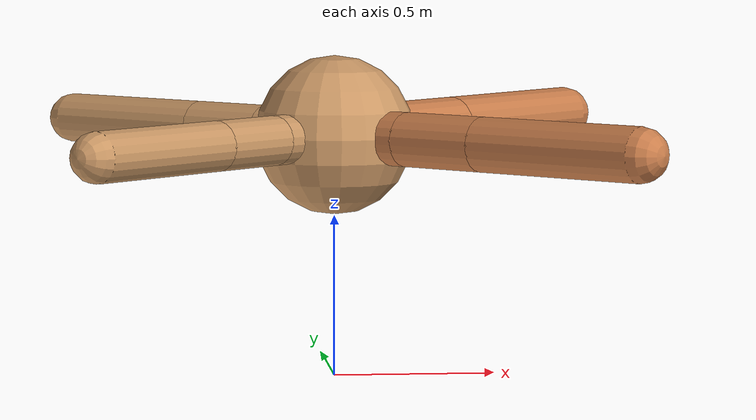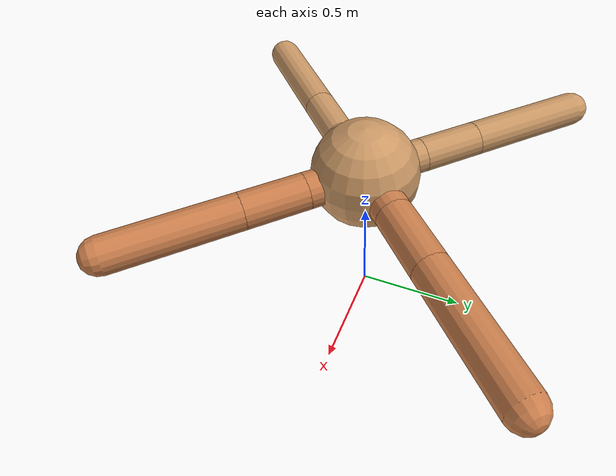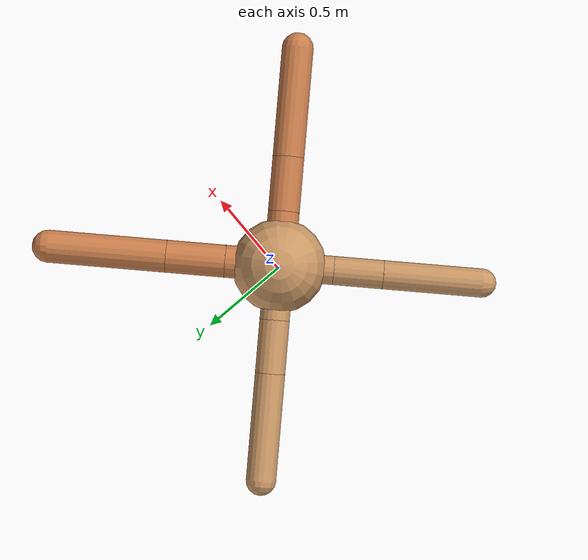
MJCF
<?xml version="1.0" ?>
<mujoco model="ant">

	<compiler angle="degree" coordinate="local" inertiafromgeom="true"/>

	<option integrator="RK4" timestep="0.01"/>

	<custom>

		<numeric data="0.0 0.0 0.55 1.0 0.0 0.0 0.0 0.0 1.0 0.0 -1.0 0.0 -1.0 0.0 1.0" name="init_qpos"/>

	</custom>

	<default>

		<joint armature="1" damping="1" limited="true"/>

		<geom conaffinity="0" condim="3" density="5.0" friction="1.5 0.1 0.1" margin="0.01" rgba="0.8 0.6 0.4 1"/>

	</default>

	<worldbody>

		<body name="torso" pos="0 0 0.75">

			<geom name="torso_geom" pos="0 0 0" size="0.246072991525829" type="sphere"/>

			<!--joint armature="0" damping="0" limited="false" margin="0.01" name="root" pos="0 0 0" type="free"/-->

			<body name="front_left_leg" pos="0 0 0">

				<geom fromto="0 0 0 0.2 0.2 0" name="aux_1_geom" size="0.08577669211288129" type="capsule" rgba=".8 .5 .3 1"/>

				<body name="aux_1" pos="0.2 0.2 0">

					<joint axis="0 0 1" name="hip_1" pos="0.0 0.0 0.0" range="-40 40" type="hinge"/>

					<geom fromto="0 0 0 0.21821730563172906 0.21821730563172906 0" name="left_leg_geom" size="0.08577669211288129" type="capsule" rgba=".8 .5 .3 1"/>

					<body pos="0.21821730563172906 0.21821730563172906 0" name="front_left_foot">

						<joint axis="-1 1 0" name="ankle_1" pos="0.0 0.0 0.0" range="30 100" type="hinge"/>

						<geom fromto="0 0 0 0.4364346112634581 0.4364346112634581 0" name="left_ankle_geom" size="0.08577669211288129" type="capsule" rgba=".8 .5 .3 1"/>

					</body>

				</body>

			</body>

			<body name="front_right_leg" pos="0 0 0">

				<geom fromto="0 0 0 -0.2 0.2 0" name="aux_2_geom" size="0.0789799901062063" type="capsule"/>

				<body name="aux_2" pos="-0.2 0.2 0">

					<joint axis="0 0 1" name="hip_2" pos="0.0 0.0 0.0" range="-40 40" type="hinge"/>

					<geom fromto="0 0 0 -0.19766775682857884 0.19766775682857884 0" name="right_leg_geom" size="0.0789799901062063" type="capsule"/>

					<body pos="-0.19766775682857884 0.19766775682857884 0" name="front_right_foot">

						<joint axis="1 1 0" name="ankle_2" pos="0.0 0.0 0.0" range="-100 -30" type="hinge"/>

						<geom fromto="0 0 0 -0.3953355136571577 0.3953355136571577 0" name="right_ankle_geom" size="0.0789799901062063" type="capsule"/>

					</body>

				</body>

			</body>

			<body name="left_back_leg" pos="0 0 0">

				<geom fromto="0 0 0 -0.2 -0.2 0" name="aux_3_geom" size="0.07575358335524805" type="capsule"/>

				<body name="aux_3" pos="-0.2 -0.2 0">

					<joint axis="0 0 1" name="hip_3" pos="0.0 0.0 0.0" range="-40 40" type="hinge"/>

					<geom fromto="0 0 0 -0.1830189978728499 -0.1830189978728499 0" name="back_leg_geom" size="0.07575358335524805" type="capsule"/>

					<body pos="-0.1830189978728499 -0.1830189978728499 0" name="left_back_foot">

						<joint axis="-1 1 0" name="ankle_3" pos="0.0 0.0 0.0" range="-100 -30" type="hinge"/>

						<geom fromto="0 0 0 -0.3660379957456998 -0.3660379957456998 0" name="third_ankle_geom" size="0.07575358335524805" type="capsule"/>

					</body>

				</body>

			</body>

			<body name="right_back_leg" pos="0 0 0">

				<geom fromto="0 0 0 0.2 -0.2 0" name="aux_4_geom" size="0.08305322166253021" type="capsule" rgba=".8 .5 .3 1"/>

				<body name="aux_4" pos="0.2 -0.2 0">

					<joint axis="0 0 1" name="hip_4" pos="0.0 0.0 0.0" range="-40 40" type="hinge"/>

					<geom fromto="0 0 0 0.20241205292864348 -0.20241205292864348 0" name="rightback_leg_geom" size="0.08305322166253021" type="capsule" rgba=".8 .5 .3 1"/>

					<body pos="0.20241205292864348 -0.20241205292864348 0" name="right_back_foot">

						<joint axis="1 1 0" name="ankle_4" pos="0.0 0.0 0.0" range="30 100" type="hinge"/>

						<geom fromto="0 0 0 0.40482410585728695 -0.40482410585728695 0" name="fourth_ankle_geom" size="0.08305322166253021" type="capsule" rgba=".8 .5 .3 1"/>

					</body>

				</body>

			</body>

		</body>

	</worldbody>

	<actuator>

		<motor ctrllimited="true" ctrlrange="-1.0 1.0" joint="hip_4" gear="150"/>

		<motor ctrllimited="true" ctrlrange="-1.0 1.0" joint="ankle_4" gear="150"/>

		<motor ctrllimited="true" ctrlrange="-1.0 1.0" joint="hip_1" gear="150"/>

		<motor ctrllimited="true" ctrlrange="-1.0 1.0" joint="ankle_1" gear="150"/>

		<motor ctrllimited="true" ctrlrange="-1.0 1.0" joint="hip_2" gear="150"/>

		<motor ctrllimited="true" ctrlrange="-1.0 1.0" joint="ankle_2" gear="150"/>

		<motor ctrllimited="true" ctrlrange="-1.0 1.0" joint="hip_3" gear="150"/>

		<motor ctrllimited="true" ctrlrange="-1.0 1.0" joint="ankle_3" gear="150"/>

	</actuator>

</mujoco>
